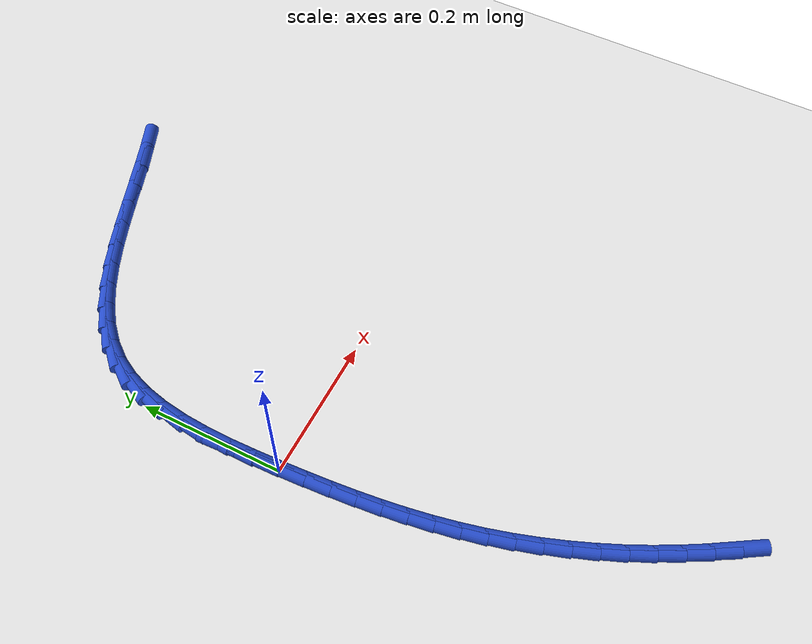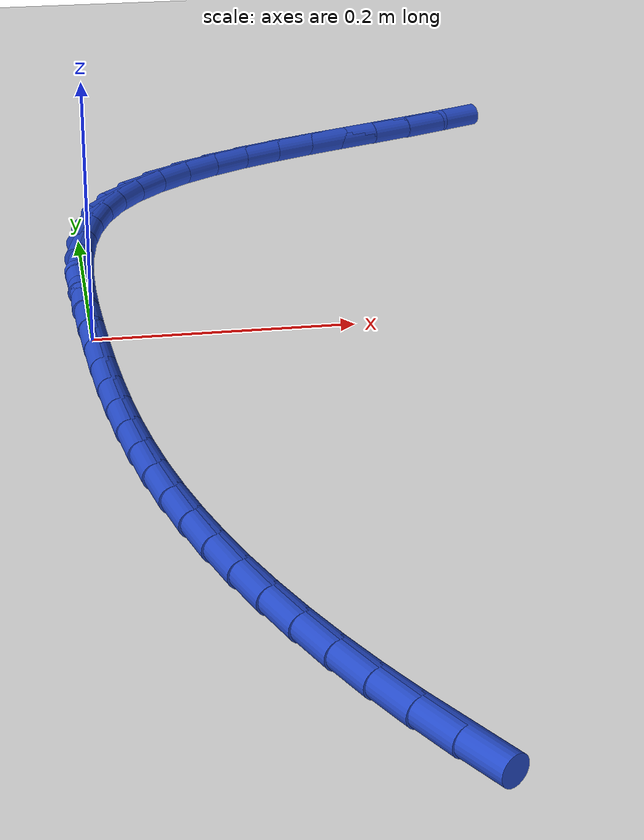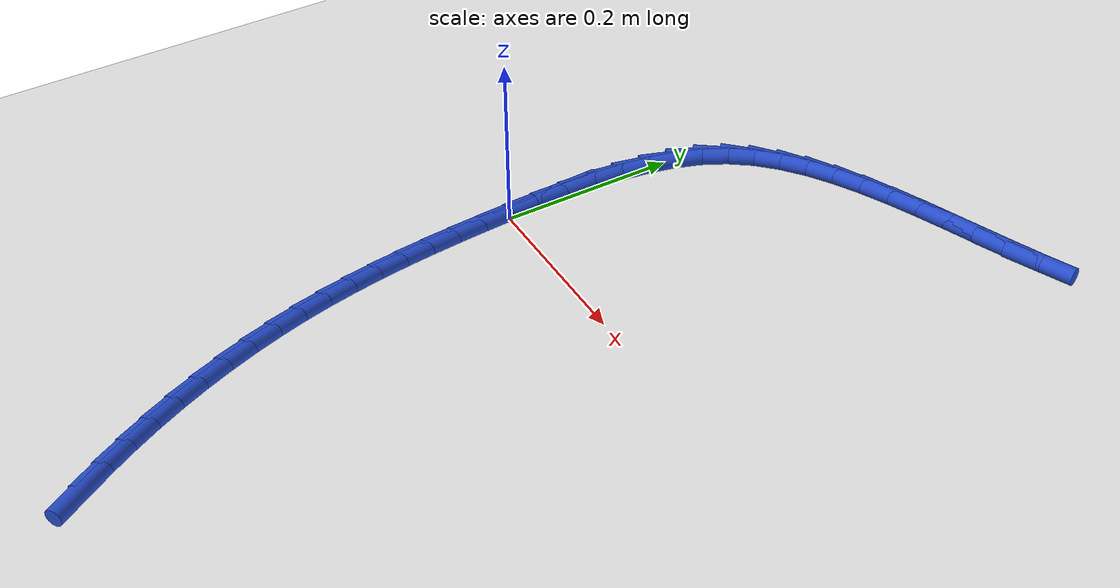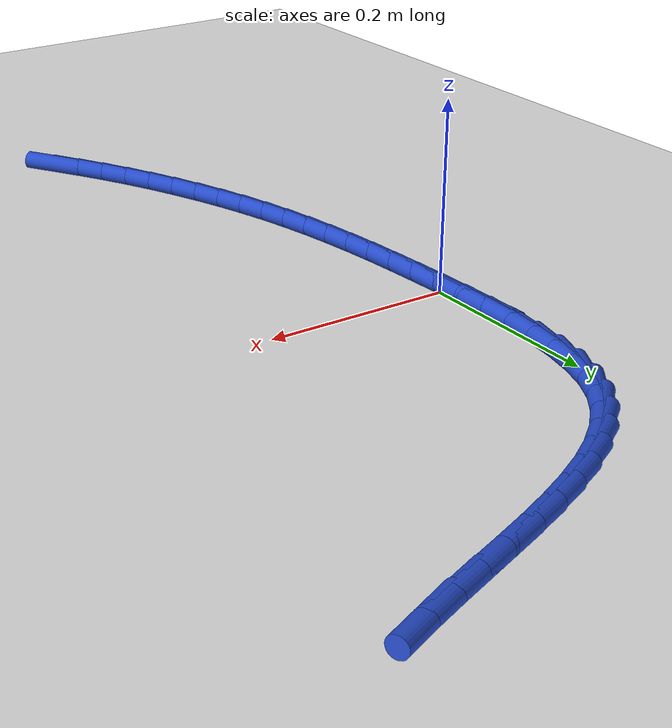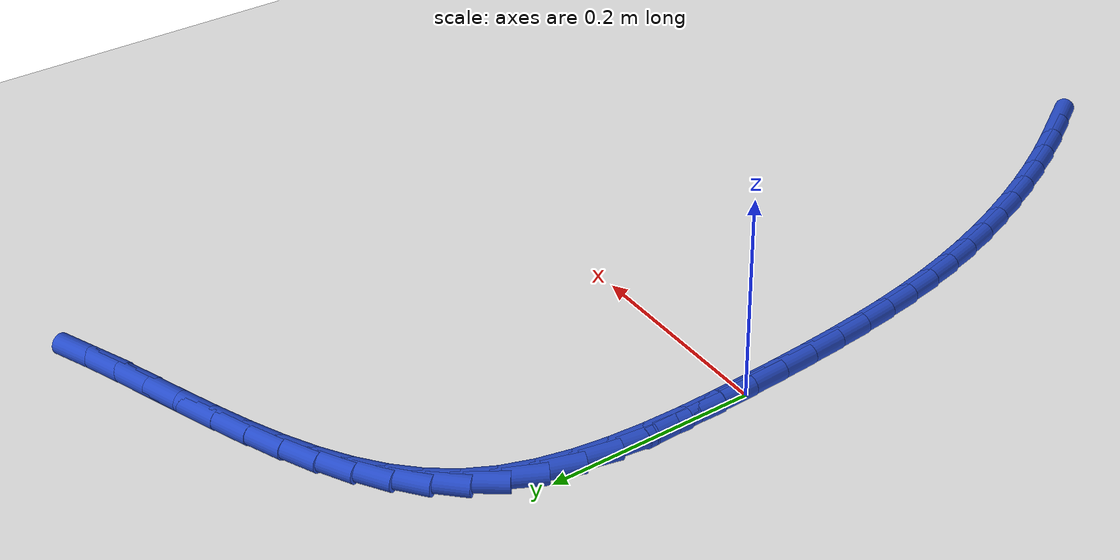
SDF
<sdf version="1.6">
 <world name="default">
  <model name="ground_plane">
   <static>1</static>
   <link name="link">
    <collision name="collision">
     <geometry><plane><normal>0 0 1</normal><size>100 100</size></plane></geometry>
     <surface><friction><ode><mu>100</mu><mu2>50</mu2></ode></friction></surface>
    </collision>
    <visual name="visual">
     <cast_shadows>0</cast_shadows>
     <geometry><plane><normal>0 0 1</normal><size>100 100</size></plane></geometry>
     <material>
      <script><uri>file://media/materials/scripts/gazebo.material</uri><name>Gazebo/WhiteGlow</name></script>
     </material>
    </visual>
   </link>
  </model>
  <model name="line">
   <link name="link_0">
    <pose>-1.0408340855860843e-17 -6.245004513516506e-17 0.01 0 1.57 -1.5242962245123777</pose>
    <collision name="collision">
     <geometry><cylinder><radius>0.01</radius><length>0.08</length></cylinder></geometry>
    </collision>
    <visual name="visual">
     <material>
      <script><name>Gazebo/Blue</name><uri>file://media/materials/scripts/gazebo.material</uri></script>
     </material>
     <geometry><cylinder><radius>0.01</radius><length>0.08</length></cylinder></geometry>
    </visual>
   </link>
   <link name="link_1">
    <pose>-0.001641731145644832 0.03528051792536974 0.01 0 1.57 -1.5468645487586332</pose>
    <collision name="collision">
     <geometry><cylinder><radius>0.01</radius><length>0.08</length></cylinder></geometry>
    </collision>
    <visual name="visual">
     <material>
      <script><name>Gazebo/Blue</name><uri>file://media/materials/scripts/gazebo.material</uri></script>
     </material>
     <geometry><cylinder><radius>0.01</radius><length>0.08</length></cylinder></geometry>
    </visual>
   </link>
   <link name="link_2">
    <pose>-0.002492273666800602 0.07081403058766653 0.01 0 1.57 1.5585439790314888</pose>
    <collision name="collision">
     <geometry><cylinder><radius>0.01</radius><length>0.08</length></cylinder></geometry>
    </collision>
    <visual name="visual">
     <material>
      <script><name>Gazebo/Blue</name><uri>file://media/materials/scripts/gazebo.material</uri></script>
     </material>
     <geometry><cylinder><radius>0.01</radius><length>0.08</length></cylinder></geometry>
    </visual>
   </link>
   <link name="link_3">
    <pose>-0.0020595682603095273 0.10612838519522573 0.01 0 1.57 1.5071096498755654</pose>
    <collision name="collision">
     <geometry><cylinder><radius>0.01</radius><length>0.08</length></cylinder></geometry>
    </collision>
    <visual name="visual">
     <material>
      <script><name>Gazebo/Blue</name><uri>file://media/materials/scripts/gazebo.material</uri></script>
     </material>
     <geometry><cylinder><radius>0.01</radius><length>0.08</length></cylinder></geometry>
    </visual>
   </link>
   <link name="link_4">
    <pose>0.00014844437698618117 0.1407514289563828 0.01 0 1.57 1.4378307206908574</pose>
    <collision name="collision">
     <geometry><cylinder><radius>0.01</radius><length>0.08</length></cylinder></geometry>
    </collision>
    <visual name="visual">
     <material>
      <script><name>Gazebo/Blue</name><uri>file://media/materials/scripts/gazebo.material</uri></script>
     </material>
     <geometry><cylinder><radius>0.01</radius><length>0.08</length></cylinder></geometry>
    </visual>
   </link>
   <link name="link_5">
    <pose>0.004623823548244313 0.1742110090794732 0.01 0 1.57 1.3472573982862939</pose>
    <collision name="collision">
     <geometry><cylinder><radius>0.01</radius><length>0.08</length></cylinder></geometry>
    </collision>
    <visual name="visual">
     <material>
      <script><name>Gazebo/Blue</name><uri>file://media/materials/scripts/gazebo.material</uri></script>
     </material>
     <geometry><cylinder><radius>0.01</radius><length>0.08</length></cylinder></geometry>
    </visual>
   </link>
   <link name="link_6">
    <pose>0.011858628556622668 0.2060349727728325 0.01 0 1.57 1.2315569330320024</pose>
    <collision name="collision">
     <geometry><cylinder><radius>0.01</radius><length>0.08</length></cylinder></geometry>
    </collision>
    <visual name="visual">
     <material>
      <script><name>Gazebo/Blue</name><uri>file://media/materials/scripts/gazebo.material</uri></script>
     </material>
     <geometry><cylinder><radius>0.01</radius><length>0.08</length></cylinder></geometry>
    </visual>
   </link>
   <link name="link_7">
    <pose>0.022344918705279018 0.23575116724479603 0.01 0 1.57 1.0878575632266727</pose>
    <collision name="collision">
     <geometry><cylinder><radius>0.01</radius><length>0.08</length></cylinder></geometry>
    </collision>
    <visual name="visual">
     <material>
      <script><name>Gazebo/Blue</name><uri>file://media/materials/scripts/gazebo.material</uri></script>
     </material>
     <geometry><cylinder><radius>0.01</radius><length>0.08</length></cylinder></geometry>
    </visual>
   </link>
   <link name="link_8">
    <pose>0.03657414379491462 0.26288795534059767 0.01 0 1.57 0.9271885301556586</pose>
    <collision name="collision">
     <geometry><cylinder><radius>0.01</radius><length>0.08</length></cylinder></geometry>
    </collision>
    <visual name="visual">
     <material>
      <script><name>Gazebo/Blue</name><uri>file://media/materials/scripts/gazebo.material</uri></script>
     </material>
     <geometry><cylinder><radius>0.01</radius><length>0.08</length></cylinder></geometry>
    </visual>
   </link>
   <link name="link_9">
    <pose>0.05479593500196286 0.28717827759677617 0.01 0 1.57 0.7816756826921644</pose>
    <collision name="collision">
     <geometry><cylinder><radius>0.01</radius><length>0.08</length></cylinder></geometry>
    </collision>
    <visual name="visual">
     <material>
      <script><name>Gazebo/Blue</name><uri>file://media/materials/scripts/gazebo.material</uri></script>
     </material>
     <geometry><cylinder><radius>0.01</radius><length>0.08</length></cylinder></geometry>
    </visual>
   </link>
   <link name="link_10">
    <pose>0.07665044875000045 0.30887068801109635 0.01 0 1.57 0.6598725122205333</pose>
    <collision name="collision">
     <geometry><cylinder><radius>0.01</radius><length>0.08</length></cylinder></geometry>
    </collision>
    <visual name="visual">
     <material>
      <script><name>Gazebo/Blue</name><uri>file://media/materials/scripts/gazebo.material</uri></script>
     </material>
     <geometry><cylinder><radius>0.01</radius><length>0.08</length></cylinder></geometry>
    </visual>
   </link>
   <link name="link_11">
    <pose>0.10168331765974586 0.32829370738049224 0.01 0 1.57 0.5620662765005381</pose>
    <collision name="collision">
     <geometry><cylinder><radius>0.01</radius><length>0.08</length></cylinder></geometry>
    </collision>
    <visual name="visual">
     <material>
      <script><name>Gazebo/Blue</name><uri>file://media/materials/scripts/gazebo.material</uri></script>
     </material>
     <geometry><cylinder><radius>0.01</radius><length>0.08</length></cylinder></geometry>
    </visual>
   </link>
   <link name="link_12">
    <pose>0.1294401743519176 0.3457758565018975 0.01 0 1.57 0.4862077969593098</pose>
    <collision name="collision">
     <geometry><cylinder><radius>0.01</radius><length>0.08</length></cylinder></geometry>
    </collision>
    <visual name="visual">
     <material>
      <script><name>Gazebo/Blue</name><uri>file://media/materials/scripts/gazebo.material</uri></script>
     </material>
     <geometry><cylinder><radius>0.01</radius><length>0.08</length></cylinder></geometry>
    </visual>
   </link>
   <link name="link_13">
    <pose>0.1594666514472341 0.36164565617224603 0.01 0 1.57 0.4295506016939071</pose>
    <collision name="collision">
     <geometry><cylinder><radius>0.01</radius><length>0.08</length></cylinder></geometry>
    </collision>
    <visual name="visual">
     <material>
      <script><name>Gazebo/Blue</name><uri>file://media/materials/scripts/gazebo.material</uri></script>
     </material>
     <geometry><cylinder><radius>0.01</radius><length>0.08</length></cylinder></geometry>
    </visual>
   </link>
   <link name="link_14">
    <pose>0.19130838156641392 0.37623162718847164 0.01 0 1.57 0.389550702468506</pose>
    <collision name="collision">
     <geometry><cylinder><radius>0.01</radius><length>0.08</length></cylinder></geometry>
    </collision>
    <visual name="visual">
     <material>
      <script><name>Gazebo/Blue</name><uri>file://media/materials/scripts/gazebo.material</uri></script>
     </material>
     <geometry><cylinder><radius>0.01</radius><length>0.08</length></cylinder></geometry>
    </visual>
   </link>
   <link name="link_15">
    <pose>0.2245109973301755 0.38986229034750813 0.01 0 1.57 0.3642329124297852</pose>
    <collision name="collision">
     <geometry><cylinder><radius>0.01</radius><length>0.08</length></cylinder></geometry>
    </collision>
    <visual name="visual">
     <material>
      <script><name>Gazebo/Blue</name><uri>file://media/materials/scripts/gazebo.material</uri></script>
     </material>
     <geometry><cylinder><radius>0.01</radius><length>0.08</length></cylinder></geometry>
    </visual>
   </link>
   <link name="link_16">
    <pose>0.2586201313592373 0.4028661664462892 0.01 0 1.57 0.35228973752327797</pose>
    <collision name="collision">
     <geometry><cylinder><radius>0.01</radius><length>0.08</length></cylinder></geometry>
    </collision>
    <visual name="visual">
     <material>
      <script><name>Gazebo/Blue</name><uri>file://media/materials/scripts/gazebo.material</uri></script>
     </material>
     <geometry><cylinder><radius>0.01</radius><length>0.08</length></cylinder></geometry>
    </visual>
   </link>
   <link name="link_17">
    <pose>0.2931814162743178 0.41557177628174874 0.01 0 1.57 0.3530814933342306</pose>
    <collision name="collision">
     <geometry><cylinder><radius>0.01</radius><length>0.08</length></cylinder></geometry>
    </collision>
    <visual name="visual">
     <material>
      <script><name>Gazebo/Blue</name><uri>file://media/materials/scripts/gazebo.material</uri></script>
     </material>
     <geometry><cylinder><radius>0.01</radius><length>0.08</length></cylinder></geometry>
    </visual>
   </link>
   <link name="link_18">
    <pose>0.3277404846961356 0.42830764065082055 0.01 0 1.57 0.36661938496942403</pose>
    <collision name="collision">
     <geometry><cylinder><radius>0.01</radius><length>0.08</length></cylinder></geometry>
    </collision>
    <visual name="visual">
     <material>
      <script><name>Gazebo/Blue</name><uri>file://media/materials/scripts/gazebo.material</uri></script>
     </material>
     <geometry><cylinder><radius>0.01</radius><length>0.08</length></cylinder></geometry>
    </visual>
   </link>
   <link name="link_19">
    <pose>0.36184296924540893 0.44140228035043844 0.01 0 1.57 0.3935616112670279</pose>
    <collision name="collision">
     <geometry><cylinder><radius>0.01</radius><length>0.08</length></cylinder></geometry>
    </collision>
    <visual name="visual">
     <material>
      <script><name>Gazebo/Blue</name><uri>file://media/materials/scripts/gazebo.material</uri></script>
     </material>
     <geometry><cylinder><radius>0.01</radius><length>0.08</length></cylinder></geometry>
    </visual>
   </link>
   <link name="link_223">
    <pose>0.15698178026416043 -0.5373510355528897 0.01 0 1.57 -1.0135532667973872</pose>
    <collision name="collision">
     <geometry><cylinder><radius>0.01</radius><length>0.08</length></cylinder></geometry>
    </collision>
    <visual name="visual">
     <material>
      <script><name>Gazebo/Blue</name><uri>file://media/materials/scripts/gazebo.material</uri></script>
     </material>
     <geometry><cylinder><radius>0.01</radius><length>0.08</length></cylinder></geometry>
    </visual>
   </link>
   <link name="link_224">
    <pose>0.13933023637456915 -0.5090231535301104 0.01 0 1.57 -1.047074546530536</pose>
    <collision name="collision">
     <geometry><cylinder><radius>0.01</radius><length>0.08</length></cylinder></geometry>
    </collision>
    <visual name="visual">
     <material>
      <script><name>Gazebo/Blue</name><uri>file://media/materials/scripts/gazebo.material</uri></script>
     </material>
     <geometry><cylinder><radius>0.01</radius><length>0.08</length></cylinder></geometry>
    </visual>
   </link>
   <link name="link_225">
    <pose>0.12259335606292893 -0.480042259573621 0.01 0 1.57 -1.081851697033323</pose>
    <collision name="collision">
     <geometry><cylinder><radius>0.01</radius><length>0.08</length></cylinder></geometry>
    </collision>
    <visual name="visual">
     <material>
      <script><name>Gazebo/Blue</name><uri>file://media/materials/scripts/gazebo.material</uri></script>
     </material>
     <geometry><cylinder><radius>0.01</radius><length>0.08</length></cylinder></geometry>
    </visual>
   </link>
   <link name="link_226">
    <pose>0.1068384910232017 -0.450429704207378 0.01 0 1.57 -1.1165941165095807</pose>
    <collision name="collision">
     <geometry><cylinder><radius>0.01</radius><length>0.08</length></cylinder></geometry>
    </collision>
    <visual name="visual">
     <material>
      <script><name>Gazebo/Blue</name><uri>file://media/materials/scripts/gazebo.material</uri></script>
     </material>
     <geometry><cylinder><radius>0.01</radius><length>0.08</length></cylinder></geometry>
    </visual>
   </link>
   <link name="link_227">
    <pose>0.09210927739286737 -0.42026224520857214 0.01 0 1.57 -1.1514729097867784</pose>
    <collision name="collision">
     <geometry><cylinder><radius>0.01</radius><length>0.08</length></cylinder></geometry>
    </collision>
    <visual name="visual">
     <material>
      <script><name>Gazebo/Blue</name><uri>file://media/materials/scripts/gazebo.material</uri></script>
     </material>
     <geometry><cylinder><radius>0.01</radius><length>0.08</length></cylinder></geometry>
    </visual>
   </link>
   <link name="link_228">
    <pose>0.07844900942255001 -0.38961743911328534 0.01 0 1.57 -1.186679991679696</pose>
    <collision name="collision">
     <geometry><cylinder><radius>0.01</radius><length>0.08</length></cylinder></geometry>
    </collision>
    <visual name="visual">
     <material>
      <script><name>Gazebo/Blue</name><uri>file://media/materials/scripts/gazebo.material</uri></script>
     </material>
     <geometry><cylinder><radius>0.01</radius><length>0.08</length></cylinder></geometry>
    </visual>
   </link>
   <link name="link_229">
    <pose>0.06590098136287376 -0.35857284245759957 0.01 0 1.57 -1.2224090607124145</pose>
    <collision name="collision">
     <geometry><cylinder><radius>0.01</radius><length>0.08</length></cylinder></geometry>
    </collision>
    <visual name="visual">
     <material>
      <script><name>Gazebo/Blue</name><uri>file://media/materials/scripts/gazebo.material</uri></script>
     </material>
     <geometry><cylinder><radius>0.01</radius><length>0.08</length></cylinder></geometry>
    </visual>
   </link>
   <link name="link_230">
    <pose>0.05450848746446246 -0.3272060117775955 0.01 0 1.57 -1.2588572205562278</pose>
    <collision name="collision">
     <geometry><cylinder><radius>0.01</radius><length>0.08</length></cylinder></geometry>
    </collision>
    <visual name="visual">
     <material>
      <script><name>Gazebo/Blue</name><uri>file://media/materials/scripts/gazebo.material</uri></script>
     </material>
     <geometry><cylinder><radius>0.01</radius><length>0.08</length></cylinder></geometry>
    </visual>
   </link>
   <link name="link_231">
    <pose>0.04431482197794082 -0.29559450360935696 0.01 0 1.57 -1.2962264006835007</pose>
    <collision name="collision">
     <geometry><cylinder><radius>0.01</radius><length>0.08</length></cylinder></geometry>
    </collision>
    <visual name="visual">
     <material>
      <script><name>Gazebo/Blue</name><uri>file://media/materials/scripts/gazebo.material</uri></script>
     </material>
     <geometry><cylinder><radius>0.01</radius><length>0.08</length></cylinder></geometry>
    </visual>
   </link>
   <link name="link_232">
    <pose>0.03536327915393263 -0.2638158744889647 0.01 0 1.57 -1.3343354711438524</pose>
    <collision name="collision">
     <geometry><cylinder><radius>0.01</radius><length>0.08</length></cylinder></geometry>
    </collision>
    <visual name="visual">
     <material>
      <script><name>Gazebo/Blue</name><uri>file://media/materials/scripts/gazebo.material</uri></script>
     </material>
     <geometry><cylinder><radius>0.01</radius><length>0.08</length></cylinder></geometry>
    </visual>
   </link>
   <link name="link_233">
    <pose>0.027680183277441938 -0.23193168649635684 0.01 0 1.57 -1.3706561275962688</pose>
    <collision name="collision">
     <geometry><cylinder><radius>0.01</radius><length>0.08</length></cylinder></geometry>
    </collision>
    <visual name="visual">
     <material>
      <script><name>Gazebo/Blue</name><uri>file://media/materials/scripts/gazebo.material</uri></script>
     </material>
     <geometry><cylinder><radius>0.01</radius><length>0.08</length></cylinder></geometry>
    </visual>
   </link>
   <link name="link_234">
    <pose>0.021182438939284273 -0.19990037195038873 0.01 0 1.57 -1.4037759048020437</pose>
    <collision name="collision">
     <geometry><cylinder><radius>0.01</radius><length>0.08</length></cylinder></geometry>
    </collision>
    <visual name="visual">
     <material>
      <script><name>Gazebo/Blue</name><uri>file://media/materials/scripts/gazebo.material</uri></script>
     </material>
     <geometry><cylinder><radius>0.01</radius><length>0.08</length></cylinder></geometry>
    </visual>
   </link>
   <link name="link_235">
    <pose>0.015743536758174703 -0.16763944482698362 0.01 0 1.57 -1.433313415694117</pose>
    <collision name="collision">
     <geometry><cylinder><radius>0.01</radius><length>0.08</length></cylinder></geometry>
    </collision>
    <visual name="visual">
     <material>
      <script><name>Gazebo/Blue</name><uri>file://media/materials/scripts/gazebo.material</uri></script>
     </material>
     <geometry><cylinder><radius>0.01</radius><length>0.08</length></cylinder></geometry>
    </visual>
   </link>
   <link name="link_236">
    <pose>0.011236857928160414 -0.13506631596761565 0.01 0 1.57 -1.459001507049528</pose>
    <collision name="collision">
     <geometry><cylinder><radius>0.01</radius><length>0.08</length></cylinder></geometry>
    </collision>
    <visual name="visual">
     <material>
      <script><name>Gazebo/Blue</name><uri>file://media/materials/scripts/gazebo.material</uri></script>
     </material>
     <geometry><cylinder><radius>0.01</radius><length>0.08</length></cylinder></geometry>
    </visual>
   </link>
   <link name="link_237">
    <pose>0.007535783643288612 -0.1020983962137592 0.01 0 1.57 -1.480681909165811</pose>
    <collision name="collision">
     <geometry><cylinder><radius>0.01</radius><length>0.08</length></cylinder></geometry>
    </collision>
    <visual name="visual">
     <material>
      <script><name>Gazebo/Blue</name><uri>file://media/materials/scripts/gazebo.material</uri></script>
     </material>
     <geometry><cylinder><radius>0.01</radius><length>0.08</length></cylinder></geometry>
    </visual>
   </link>
   <link name="link_238">
    <pose>0.004513695097606413 -0.06865309640688753 0.01 0 1.57 -1.4982960063976412</pose>
    <collision name="collision">
     <geometry><cylinder><radius>0.01</radius><length>0.08</length></cylinder></geometry>
    </collision>
    <visual name="visual">
     <material>
      <script><name>Gazebo/Blue</name><uri>file://media/materials/scripts/gazebo.material</uri></script>
     </material>
     <geometry><cylinder><radius>0.01</radius><length>0.08</length></cylinder></geometry>
    </visual>
   </link>
   <link name="link_239">
    <pose>0.0020439734851611735 -0.03464782738847675 0.01 0 1.57 -1.511871786253783</pose>
    <collision name="collision">
     <geometry><cylinder><radius>0.01</radius><length>0.08</length></cylinder></geometry>
    </collision>
    <visual name="visual">
     <material>
      <script><name>Gazebo/Blue</name><uri>file://media/materials/scripts/gazebo.material</uri></script>
     </material>
     <geometry><cylinder><radius>0.01</radius><length>0.08</length></cylinder></geometry>
    </visual>
   </link>
   <link name="link_240">
    <pose>-2.168404344971009e-18 -2.0122792321330962e-16 0.01 0 1.57 -1.5215092348713362</pose>
    <collision name="collision">
     <geometry><cylinder><radius>0.01</radius><length>0.08</length></cylinder></geometry>
    </collision>
    <visual name="visual">
     <material>
      <script><name>Gazebo/Blue</name><uri>file://media/materials/scripts/gazebo.material</uri></script>
     </material>
     <geometry><cylinder><radius>0.01</radius><length>0.08</length></cylinder></geometry>
    </visual>
   </link>
   <link name="link_241">
    <pose>-0.0017448441638299172 0.03537297491706782 0.01 0 1.57 -1.5273658669356776</pose>
    <collision name="collision">
     <geometry><cylinder><radius>0.01</radius><length>0.08</length></cylinder></geometry>
    </collision>
    <visual name="visual">
     <material>
      <script><name>Gazebo/Blue</name><uri>file://media/materials/scripts/gazebo.material</uri></script>
     </material>
     <geometry><cylinder><radius>0.01</radius><length>0.08</length></cylinder></geometry>
    </visual>
   </link>
   <link name="link_242">
    <pose>-0.0033171778122813777 0.07155368652125307 0.01 0 1.57 -1.5244702096467315</pose>
    <collision name="collision">
     <geometry><cylinder><radius>0.01</radius><length>0.08</length></cylinder></geometry>
    </collision>
    <visual name="visual">
     <material>
      <script><name>Gazebo/Blue</name><uri>file://media/materials/scripts/gazebo.material</uri></script>
     </material>
     <geometry><cylinder><radius>0.01</radius><length>0.08</length></cylinder></geometry>
    </visual>
   </link>
  </model>
 </world>
</sdf>
